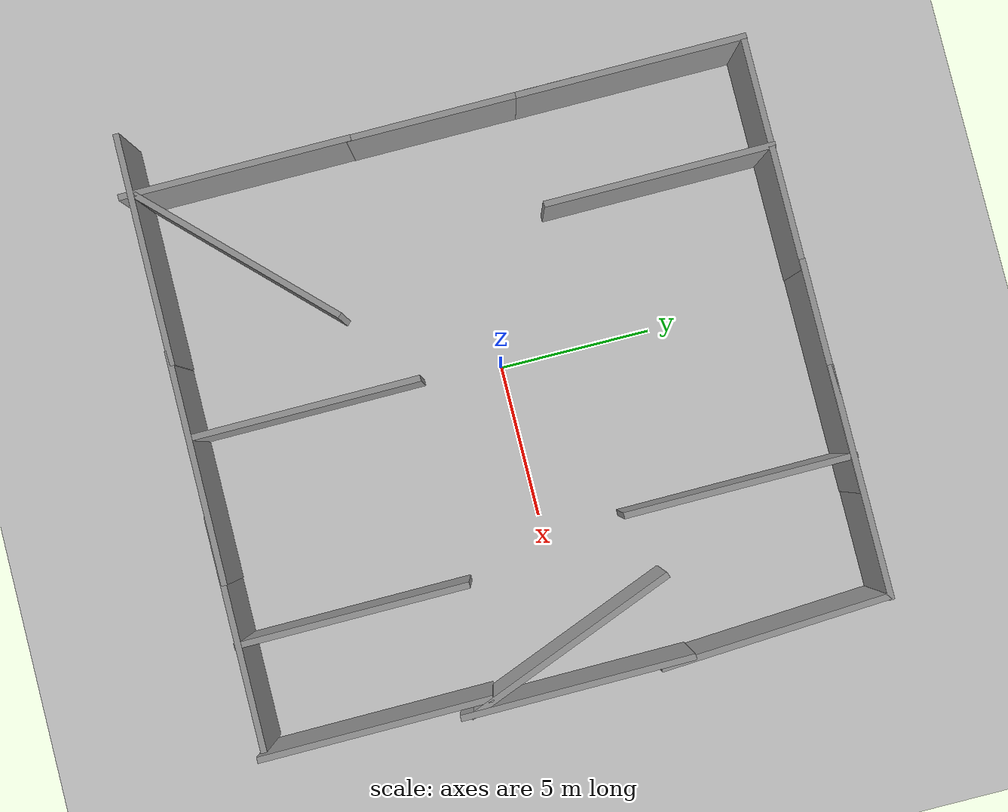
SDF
<sdf version="1.7">
 <world name="default">
  <light name="sun" type="directional">
   <pose>0 0 10 0 -0 0</pose>
   <diffuse>0.8 0.8 0.8 1</diffuse>
   <specular>0.2 0.2 0.2 1</specular>
   <attenuation>
    <range>1000</range>
    <constant>0.9</constant>
    <linear>0.01</linear>
    <quadratic>0.001</quadratic>
   </attenuation>
   <direction>-0.5 0.1 -0.9</direction>
   <spot><inner_angle>0</inner_angle><outer_angle>0</outer_angle><falloff>0</falloff></spot>
  </light>
  <model name="ground_plane">
   <static>1</static>
   <link name="link">
    <collision name="collision">
     <geometry><plane><normal>0 0 1</normal><size>100 100</size></plane></geometry>
     <surface><friction><ode><mu>100</mu><mu2>50</mu2></ode></friction></surface>
    </collision>
    <visual name="visual">
     <cast_shadows>0</cast_shadows>
     <geometry><plane><normal>0 0 1</normal><size>100 100</size></plane></geometry>
     <material>
      <script><uri>file://media/materials/scripts/gazebo.material</uri><name>Gazebo/Grey</name></script>
     </material>
    </visual>
   </link>
  </model>
  <gravity>0 0 -9.8</gravity>
  <magnetic_field>6e-06 2.3e-05 -4.2e-05</magnetic_field>
  <atmosphere type="adiabatic"/>
  <physics type="ode">
   <max_step_size>0.001</max_step_size>
   <real_time_factor>1</real_time_factor>
   <real_time_update_rate>1000</real_time_update_rate>
  </physics>
  <scene><ambient>0.4 0.4 0.4 1</ambient><background>0.7 0.7 0.7 1</background><shadows>1</shadows></scene>
  <spherical_coordinates>
   <surface_model>EARTH_WGS84</surface_model>
   <latitude_deg>0</latitude_deg>
   <longitude_deg>0</longitude_deg>
   <elevation>0</elevation>
   <heading_deg>0</heading_deg>
  </spherical_coordinates>
  <model name="grey_wall">
   <static>1</static>
   <link name="link">
    <pose>0 0 1.4 0 -0 0</pose>
    <collision name="collision"><geometry><box><size>7.5 0.2 2.8</size></box></geometry></collision>
    <visual name="visual">
     <cast_shadows>0</cast_shadows>
     <geometry><box><size>7.5 0.2 2.8</size></box></geometry>
     <material>
      <script>
       <uri>model://grey_wall/materials/scripts</uri>
       <uri>model://grey_wall/materials/textures</uri>
       <name>vrc/grey_wall</name>
      </script>
     </material>
    </visual>
   </link>
   <pose>-4.24865 9.86895 0 0 -0 0</pose>
  </model>
  <model name="grey_wall_0">
   <static>1</static>
   <link name="link">
    <pose>0 0 1.4 0 -0 0</pose>
    <collision name="collision"><geometry><box><size>7.5 0.2 2.8</size></box></geometry></collision>
    <visual name="visual">
     <cast_shadows>0</cast_shadows>
     <geometry><box><size>7.5 0.2 2.8</size></box></geometry>
     <material>
      <script>
       <uri>model://grey_wall/materials/scripts</uri>
       <uri>model://grey_wall/materials/textures</uri>
       <name>vrc/grey_wall</name>
      </script>
     </material>
    </visual>
   </link>
   <pose>2.9169 9.88438 0 0 -0 0</pose>
  </model>
  <model name="grey_wall_1">
   <static>1</static>
   <link name="link">
    <pose>0 0 1.4 0 -0 0</pose>
    <collision name="collision"><geometry><box><size>7.5 0.2 2.8</size></box></geometry></collision>
    <visual name="visual">
     <cast_shadows>0</cast_shadows>
     <geometry><box><size>7.5 0.2 2.8</size></box></geometry>
     <material>
      <script>
       <uri>model://grey_wall/materials/scripts</uri>
       <uri>model://grey_wall/materials/textures</uri>
       <name>vrc/grey_wall</name>
      </script>
     </material>
    </visual>
   </link>
   <pose>6.32818 9.89823 0 0 -0 0</pose>
  </model>
  <model name="grey_wall_2">
   <static>1</static>
   <link name="link">
    <pose>0 0 1.4 0 -0 0</pose>
    <collision name="collision"><geometry><box><size>7.5 0.2 2.8</size></box></geometry></collision>
    <visual name="visual">
     <cast_shadows>0</cast_shadows>
     <geometry><box><size>7.5 0.2 2.8</size></box></geometry>
     <material>
      <script>
       <uri>model://grey_wall/materials/scripts</uri>
       <uri>model://grey_wall/materials/textures</uri>
       <name>vrc/grey_wall</name>
      </script>
     </material>
    </visual>
   </link>
   <pose>-6.13504 -9.95941 0 0 -0 0</pose>
  </model>
  <model name="grey_wall_3">
   <static>1</static>
   <link name="link">
    <pose>0 0 1.4 0 -0 0</pose>
    <collision name="collision"><geometry><box><size>7.5 0.2 2.8</size></box></geometry></collision>
    <visual name="visual">
     <cast_shadows>0</cast_shadows>
     <geometry><box><size>7.5 0.2 2.8</size></box></geometry>
     <material>
      <script>
       <uri>model://grey_wall/materials/scripts</uri>
       <uri>model://grey_wall/materials/textures</uri>
       <name>vrc/grey_wall</name>
      </script>
     </material>
    </visual>
   </link>
   <pose>0.872376 -9.98509 0 0 -0 0</pose>
  </model>
  <model name="grey_wall_4">
   <static>1</static>
   <link name="link">
    <pose>0 0 1.4 0 -0 0</pose>
    <collision name="collision"><geometry><box><size>7.5 0.2 2.8</size></box></geometry></collision>
    <visual name="visual">
     <cast_shadows>0</cast_shadows>
     <geometry><box><size>7.5 0.2 2.8</size></box></geometry>
     <material>
      <script>
       <uri>model://grey_wall/materials/scripts</uri>
       <uri>model://grey_wall/materials/textures</uri>
       <name>vrc/grey_wall</name>
      </script>
     </material>
    </visual>
   </link>
   <pose>6.1425 -10.007 0 0 -0 0</pose>
  </model>
  <model name="grey_wall_5">
   <static>1</static>
   <link name="link">
    <pose>0 0 1.4 0 -0 0</pose>
    <collision name="collision"><geometry><box><size>7.5 0.2 2.8</size></box></geometry></collision>
    <visual name="visual">
     <cast_shadows>0</cast_shadows>
     <geometry><box><size>7.5 0.2 2.8</size></box></geometry>
     <material>
      <script>
       <uri>model://grey_wall/materials/scripts</uri>
       <uri>model://grey_wall/materials/textures</uri>
       <name>vrc/grey_wall</name>
      </script>
     </material>
    </visual>
   </link>
   <pose>10.176 6.22079 0 0 0 -1.51066</pose>
  </model>
  <model name="grey_wall_5_clone">
   <static>1</static>
   <link name="link">
    <pose>0 0 1.4 0 -0 0</pose>
    <collision name="collision"><geometry><box><size>7.5 0.2 2.8</size></box></geometry></collision>
    <visual name="visual">
     <cast_shadows>0</cast_shadows>
     <geometry><box><size>7.5 0.2 2.8</size></box></geometry>
     <material>
      <script>
       <uri>model://grey_wall/materials/scripts</uri>
       <uri>model://grey_wall/materials/textures</uri>
       <name>vrc/grey_wall</name>
      </script>
     </material>
    </visual>
   </link>
   <pose>10.3222 -0.139987 0 0 0 -1.56221</pose>
  </model>
  <model name="grey_wall_5_clone_clone">
   <static>1</static>
   <link name="link">
    <pose>0 0 1.4 0 -0 0</pose>
    <collision name="collision"><geometry><box><size>7.5 0.2 2.8</size></box></geometry></collision>
    <visual name="visual">
     <cast_shadows>0</cast_shadows>
     <geometry><box><size>7.5 0.2 2.8</size></box></geometry>
     <material>
      <script>
       <uri>model://grey_wall/materials/scripts</uri>
       <uri>model://grey_wall/materials/textures</uri>
       <name>vrc/grey_wall</name>
      </script>
     </material>
    </visual>
   </link>
   <pose>10.0326 -6.51741 0 0 0 -1.56221</pose>
  </model>
  <model name="grey_wall_5_clone_clone_0">
   <static>1</static>
   <link name="link">
    <pose>0 0 1.4 0 -0 0</pose>
    <collision name="collision"><geometry><box><size>7.5 0.2 2.8</size></box></geometry></collision>
    <visual name="visual">
     <cast_shadows>0</cast_shadows>
     <geometry><box><size>7.5 0.2 2.8</size></box></geometry>
     <material>
      <script>
       <uri>model://grey_wall/materials/scripts</uri>
       <uri>model://grey_wall/materials/textures</uri>
       <name>vrc/grey_wall</name>
      </script>
     </material>
    </visual>
   </link>
   <pose>-8.04357 6.22753 0 0 0 -1.56221</pose>
  </model>
  <model name="grey_wall_5_clone_clone_1">
   <static>1</static>
   <link name="link">
    <pose>0 0 1.4 0 -0 0</pose>
    <collision name="collision"><geometry><box><size>7.5 0.2 2.8</size></box></geometry></collision>
    <visual name="visual">
     <cast_shadows>0</cast_shadows>
     <geometry><box><size>7.5 0.2 2.8</size></box></geometry>
     <material>
      <script>
       <uri>model://grey_wall/materials/scripts</uri>
       <uri>model://grey_wall/materials/textures</uri>
       <name>vrc/grey_wall</name>
      </script>
     </material>
    </visual>
   </link>
   <pose>-7.9999 0.738567 0 0 0 -1.56221</pose>
  </model>
  <model name="grey_wall_5_clone_clone_2">
   <static>1</static>
   <link name="link">
    <pose>0 0 1.4 0 -0 0</pose>
    <collision name="collision"><geometry><box><size>7.5 0.2 2.8</size></box></geometry></collision>
    <visual name="visual">
     <cast_shadows>0</cast_shadows>
     <geometry><box><size>7.5 0.2 2.8</size></box></geometry>
     <material>
      <script>
       <uri>model://grey_wall/materials/scripts</uri>
       <uri>model://grey_wall/materials/textures</uri>
       <name>vrc/grey_wall</name>
      </script>
     </material>
    </visual>
   </link>
   <pose>-7.9462 -6.60266 0 0 0 -1.56221</pose>
  </model>
  <model name="grey_wall_5_clone_clone_3">
   <static>1</static>
   <link name="link">
    <pose>0 0 1.4 0 -0 0</pose>
    <collision name="collision"><geometry><box><size>7.5 0.2 2.8</size></box></geometry></collision>
    <visual name="visual">
     <cast_shadows>0</cast_shadows>
     <geometry><box><size>7.5 0.2 2.8</size></box></geometry>
     <material>
      <script>
       <uri>model://grey_wall/materials/scripts</uri>
       <uri>model://grey_wall/materials/textures</uri>
       <name>vrc/grey_wall</name>
      </script>
     </material>
    </visual>
   </link>
   <pose>-0.096679 -6.30449 0 0 0 -1.56221</pose>
  </model>
  <model name="grey_wall_5_clone_clone_4">
   <static>1</static>
   <link name="link">
    <pose>0 0 1.4 0 -0 0</pose>
    <collision name="collision"><geometry><box><size>7.5 0.2 2.8</size></box></geometry></collision>
    <visual name="visual">
     <cast_shadows>0</cast_shadows>
     <geometry><box><size>7.5 0.2 2.8</size></box></geometry>
     <material>
      <script>
       <uri>model://grey_wall/materials/scripts</uri>
       <uri>model://grey_wall/materials/textures</uri>
       <name>vrc/grey_wall</name>
      </script>
     </material>
    </visual>
   </link>
   <pose>-4.49165 6.24762 0 0 0 -1.56221</pose>
  </model>
  <model name="grey_wall_5_clone_clone_5">
   <static>1</static>
   <link name="link">
    <pose>0 0 1.4 0 -0 0</pose>
    <collision name="collision"><geometry><box><size>7.5 0.2 2.8</size></box></geometry></collision>
    <visual name="visual">
     <cast_shadows>0</cast_shadows>
     <geometry><box><size>7.5 0.2 2.8</size></box></geometry>
     <material>
      <script>
       <uri>model://grey_wall/materials/scripts</uri>
       <uri>model://grey_wall/materials/textures</uri>
       <name>vrc/grey_wall</name>
      </script>
     </material>
    </visual>
   </link>
   <pose>5.52323 6.27172 0 0 0 -1.56221</pose>
  </model>
  <model name="grey_wall_5_clone_clone_6">
   <static>1</static>
   <link name="link">
    <pose>0 0 1.4 0 -0 0</pose>
    <collision name="collision"><geometry><box><size>7.5 0.2 2.8</size></box></geometry></collision>
    <visual name="visual">
     <cast_shadows>0</cast_shadows>
     <geometry><box><size>7.5 0.2 2.8</size></box></geometry>
     <material>
      <script>
       <uri>model://grey_wall/materials/scripts</uri>
       <uri>model://grey_wall/materials/textures</uri>
       <name>vrc/grey_wall</name>
      </script>
     </material>
    </visual>
   </link>
   <pose>6.48392 -6.38029 0 0 0 -1.56221</pose>
  </model>
  <model name="grey_wall_5_clone_clone_7">
   <static>1</static>
   <link name="link">
    <pose>0 0 1.4 0 -0 0</pose>
    <collision name="collision"><geometry><box><size>7.5 0.2 2.8</size></box></geometry></collision>
    <visual name="visual">
     <cast_shadows>0</cast_shadows>
     <geometry><box><size>7.5 0.2 2.8</size></box></geometry>
     <material>
      <script>
       <uri>model://grey_wall/materials/scripts</uri>
       <uri>model://grey_wall/materials/textures</uri>
       <name>vrc/grey_wall</name>
      </script>
     </material>
    </visual>
   </link>
   <pose>-5.26866 -7.19078 0 0 0 -2.34818</pose>
  </model>
  <model name="grey_wall_5_clone_clone_8">
   <static>1</static>
   <link name="link">
    <pose>0 0 1.4 0 -0 0</pose>
    <collision name="collision"><geometry><box><size>7.5 0.2 2.8</size></box></geometry></collision>
    <visual name="visual">
     <cast_shadows>0</cast_shadows>
     <geometry><box><size>7.5 0.2 2.8</size></box></geometry>
     <material>
      <script>
       <uri>model://grey_wall/materials/scripts</uri>
       <uri>model://grey_wall/materials/textures</uri>
       <name>vrc/grey_wall</name>
      </script>
     </material>
    </visual>
   </link>
   <pose>9.02173 -0.080011 0 0 0 -1.19473</pose>
  </model>
 </world>
</sdf>
